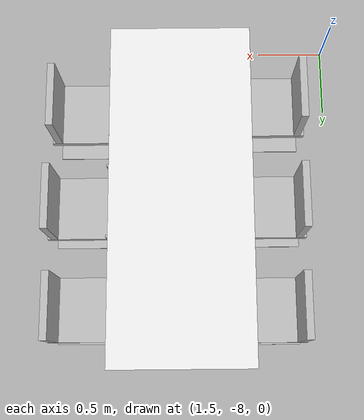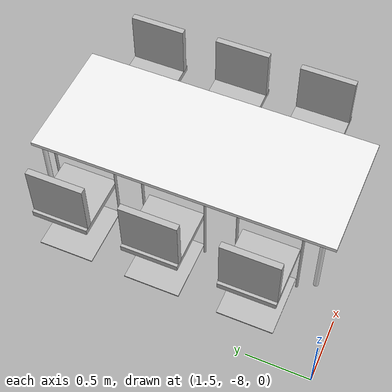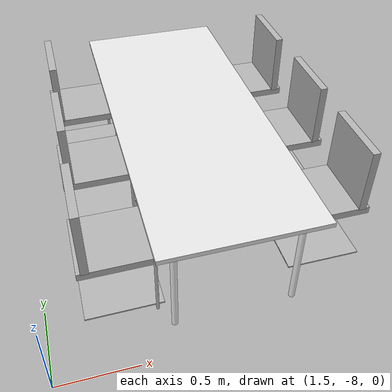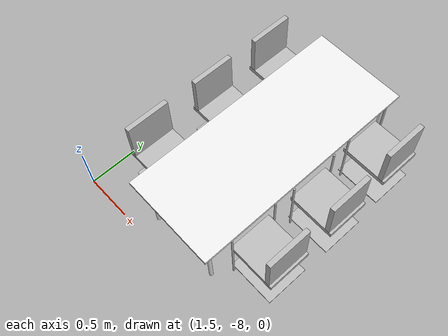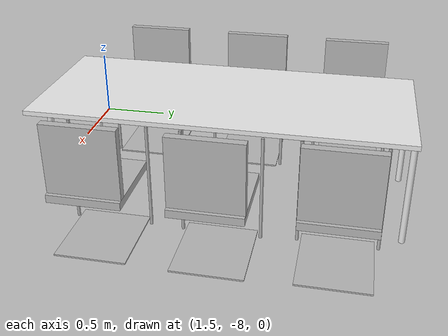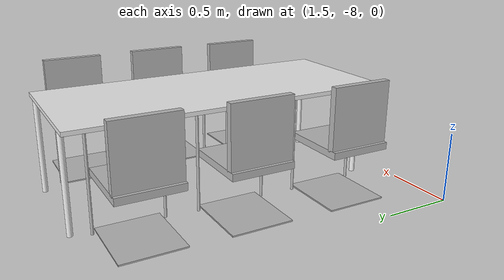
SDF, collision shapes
<sdf version="1.6">
 <model name="erica">
  <model name="table1_chair_tv_clone_clone_clone">
   <model name="h_chair">
    <link name="link_0">
     <inertial>
      <mass>1</mass>
      <inertia>
       <ixx>0.166667</ixx>
       <ixy>0</ixy>
       <ixz>0</ixz>
       <iyy>0.166667</iyy>
       <iyz>0</iyz>
       <izz>0.166667</izz>
      </inertia>
     </inertial>
     <visual name="visual">
      <geometry>
       <mesh><uri>model://erica/elements/h_chair/meshes/chair.dae</uri><scale>1 1 1</scale></mesh>
      </geometry>
     </visual>
     <collision name="collision_4">
      <pose>0 0 0.41 0 -0 0</pose>
      <geometry><box><size>0.5 0.45 0.05</size></box></geometry>
      <surface>
       <friction>
        <ode><mu>1</mu><mu2>1</mu2><fdir1>0 0 0</fdir1><slip1>0</slip1><slip2>0</slip2></ode>
        <torsional>
         <coefficient>1</coefficient>
         <patch_radius>0</patch_radius>
         <surface_radius>0</surface_radius>
         <use_patch_radius>1</use_patch_radius>
         <ode><slip>0</slip></ode>
        </torsional>
       </friction>
       <bounce><restitution_coefficient>0</restitution_coefficient><threshold>1e+06</threshold></bounce>
       <contact>
        <collide_without_contact>0</collide_without_contact>
        <collide_without_contact_bitmask>1</collide_without_contact_bitmask>
        <collide_bitmask>1</collide_bitmask>
        <ode>
         <soft_cfm>0</soft_cfm>
         <soft_erp>0.2</soft_erp>
         <kp>1e+13</kp>
         <kd>1</kd>
         <max_vel>0.01</max_vel>
         <min_depth>0</min_depth>
        </ode>
        <bullet>
         <split_impulse>1</split_impulse>
         <split_impulse_penetration_threshold>-0.01</split_impulse_penetration_threshold>
         <soft_cfm>0</soft_cfm>
         <soft_erp>0.2</soft_erp>
         <kp>1e+13</kp>
         <kd>1</kd>
        </bullet>
       </contact>
      </surface>
     </collision>
     <collision name="collision_3">
      <pose>0 0 0.01 0 -0 0</pose>
      <geometry><box><size>0.5 0.45 0.01</size></box></geometry>
      <surface>
       <friction>
        <ode><mu>1</mu><mu2>1</mu2><fdir1>0 0 0</fdir1><slip1>0</slip1><slip2>0</slip2></ode>
        <torsional>
         <coefficient>1</coefficient>
         <patch_radius>0</patch_radius>
         <surface_radius>0</surface_radius>
         <use_patch_radius>1</use_patch_radius>
         <ode><slip>0</slip></ode>
        </torsional>
       </friction>
       <bounce><restitution_coefficient>0</restitution_coefficient><threshold>1e+06</threshold></bounce>
       <contact>
        <collide_without_contact>0</collide_without_contact>
        <collide_without_contact_bitmask>1</collide_without_contact_bitmask>
        <collide_bitmask>1</collide_bitmask>
        <ode>
         <soft_cfm>0</soft_cfm>
         <soft_erp>0.2</soft_erp>
         <kp>1e+13</kp>
         <kd>1</kd>
         <max_vel>0.01</max_vel>
         <min_depth>0</min_depth>
        </ode>
        <bullet>
         <split_impulse>1</split_impulse>
         <split_impulse_penetration_threshold>-0.01</split_impulse_penetration_threshold>
         <soft_cfm>0</soft_cfm>
         <soft_erp>0.2</soft_erp>
         <kp>1e+13</kp>
         <kd>1</kd>
        </bullet>
       </contact>
      </surface>
     </collision>
     <collision name="collision_5">
      <pose>-0.2 0 0.65 0 -0 0</pose>
      <geometry><box><size>0.05 0.45 0.45</size></box></geometry>
      <surface>
       <friction>
        <ode><mu>1</mu><mu2>1</mu2><fdir1>0 0 0</fdir1><slip1>0</slip1><slip2>0</slip2></ode>
        <torsional>
         <coefficient>1</coefficient>
         <patch_radius>0</patch_radius>
         <surface_radius>0</surface_radius>
         <use_patch_radius>1</use_patch_radius>
         <ode><slip>0</slip></ode>
        </torsional>
       </friction>
       <bounce><restitution_coefficient>0</restitution_coefficient><threshold>1e+06</threshold></bounce>
       <contact>
        <collide_without_contact>0</collide_without_contact>
        <collide_without_contact_bitmask>1</collide_without_contact_bitmask>
        <collide_bitmask>1</collide_bitmask>
        <ode>
         <soft_cfm>0</soft_cfm>
         <soft_erp>0.2</soft_erp>
         <kp>1e+13</kp>
         <kd>1</kd>
         <max_vel>0.01</max_vel>
         <min_depth>0</min_depth>
        </ode>
        <bullet>
         <split_impulse>1</split_impulse>
         <split_impulse_penetration_threshold>-0.01</split_impulse_penetration_threshold>
         <soft_cfm>0</soft_cfm>
         <soft_erp>0.2</soft_erp>
         <kp>1e+13</kp>
         <kd>1</kd>
        </bullet>
       </contact>
      </surface>
     </collision>
     <collision name="collision_6">
      <pose>0.2 -0.25 0.35 0 -0 0</pose>
      <geometry><cylinder><radius>0.01</radius><length>0.7</length></cylinder></geometry>
      <surface>
       <friction>
        <ode><mu>1</mu><mu2>1</mu2><fdir1>0 0 0</fdir1><slip1>0</slip1><slip2>0</slip2></ode>
        <torsional>
         <coefficient>1</coefficient>
         <patch_radius>0</patch_radius>
         <surface_radius>0</surface_radius>
         <use_patch_radius>1</use_patch_radius>
         <ode><slip>0</slip></ode>
        </torsional>
       </friction>
       <bounce><restitution_coefficient>0</restitution_coefficient><threshold>1e+06</threshold></bounce>
       <contact>
        <collide_without_contact>0</collide_without_contact>
        <collide_without_contact_bitmask>1</collide_without_contact_bitmask>
        <collide_bitmask>1</collide_bitmask>
        <ode>
         <soft_cfm>0</soft_cfm>
         <soft_erp>0.2</soft_erp>
         <kp>1e+13</kp>
         <kd>1</kd>
         <max_vel>0.01</max_vel>
         <min_depth>0</min_depth>
        </ode>
        <bullet>
         <split_impulse>1</split_impulse>
         <split_impulse_penetration_threshold>-0.01</split_impulse_penetration_threshold>
         <soft_cfm>0</soft_cfm>
         <soft_erp>0.2</soft_erp>
         <kp>1e+13</kp>
         <kd>1</kd>
        </bullet>
       </contact>
      </surface>
     </collision>
     <collision name="collision_7">
      <pose>0.2 0.25 0.35 0 -0 0</pose>
      <geometry><cylinder><radius>0.01</radius><length>0.7</length></cylinder></geometry>
      <surface>
       <friction>
        <ode><mu>1</mu><mu2>1</mu2><fdir1>0 0 0</fdir1><slip1>0</slip1><slip2>0</slip2></ode>
        <torsional>
         <coefficient>1</coefficient>
         <patch_radius>0</patch_radius>
         <surface_radius>0</surface_radius>
         <use_patch_radius>1</use_patch_radius>
         <ode><slip>0</slip></ode>
        </torsional>
       </friction>
       <bounce><restitution_coefficient>0</restitution_coefficient><threshold>1e+06</threshold></bounce>
       <contact>
        <collide_without_contact>0</collide_without_contact>
        <collide_without_contact_bitmask>1</collide_without_contact_bitmask>
        <collide_bitmask>1</collide_bitmask>
        <ode>
         <soft_cfm>0</soft_cfm>
         <soft_erp>0.2</soft_erp>
         <kp>1e+13</kp>
         <kd>1</kd>
         <max_vel>0.01</max_vel>
         <min_depth>0</min_depth>
        </ode>
        <bullet>
         <split_impulse>1</split_impulse>
         <split_impulse_penetration_threshold>-0.01</split_impulse_penetration_threshold>
         <soft_cfm>0</soft_cfm>
         <soft_erp>0.2</soft_erp>
         <kp>1e+13</kp>
         <kd>1</kd>
        </bullet>
       </contact>
      </surface>
     </collision>
    </link>
    <static>1</static>
    <pose>-0.65015 0.677818 0 0 -0 0</pose>
   </model>
   <model name="h_chair_clone">
    <link name="link_0">
     <inertial>
      <mass>1</mass>
      <inertia>
       <ixx>0.166667</ixx>
       <ixy>0</ixy>
       <ixz>0</ixz>
       <iyy>0.166667</iyy>
       <iyz>0</iyz>
       <izz>0.166667</izz>
      </inertia>
     </inertial>
     <visual name="visual">
      <geometry>
       <mesh><uri>model://erica/elements/h_chair/meshes/chair.dae</uri><scale>1 1 1</scale></mesh>
      </geometry>
     </visual>
     <collision name="collision_4">
      <pose>0 0 0.41 0 -0 0</pose>
      <geometry><box><size>0.5 0.45 0.05</size></box></geometry>
      <surface>
       <friction>
        <ode><mu>1</mu><mu2>1</mu2><fdir1>0 0 0</fdir1><slip1>0</slip1><slip2>0</slip2></ode>
        <torsional>
         <coefficient>1</coefficient>
         <patch_radius>0</patch_radius>
         <surface_radius>0</surface_radius>
         <use_patch_radius>1</use_patch_radius>
         <ode><slip>0</slip></ode>
        </torsional>
       </friction>
       <bounce><restitution_coefficient>0</restitution_coefficient><threshold>1e+06</threshold></bounce>
       <contact>
        <collide_without_contact>0</collide_without_contact>
        <collide_without_contact_bitmask>1</collide_without_contact_bitmask>
        <collide_bitmask>1</collide_bitmask>
        <ode>
         <soft_cfm>0</soft_cfm>
         <soft_erp>0.2</soft_erp>
         <kp>1e+13</kp>
         <kd>1</kd>
         <max_vel>0.01</max_vel>
         <min_depth>0</min_depth>
        </ode>
        <bullet>
         <split_impulse>1</split_impulse>
         <split_impulse_penetration_threshold>-0.01</split_impulse_penetration_threshold>
         <soft_cfm>0</soft_cfm>
         <soft_erp>0.2</soft_erp>
         <kp>1e+13</kp>
         <kd>1</kd>
        </bullet>
       </contact>
      </surface>
     </collision>
     <collision name="collision_3">
      <pose>0 0 0.01 0 -0 0</pose>
      <geometry><box><size>0.5 0.45 0.01</size></box></geometry>
      <surface>
       <friction>
        <ode><mu>1</mu><mu2>1</mu2><fdir1>0 0 0</fdir1><slip1>0</slip1><slip2>0</slip2></ode>
        <torsional>
         <coefficient>1</coefficient>
         <patch_radius>0</patch_radius>
         <surface_radius>0</surface_radius>
         <use_patch_radius>1</use_patch_radius>
         <ode><slip>0</slip></ode>
        </torsional>
       </friction>
       <bounce><restitution_coefficient>0</restitution_coefficient><threshold>1e+06</threshold></bounce>
       <contact>
        <collide_without_contact>0</collide_without_contact>
        <collide_without_contact_bitmask>1</collide_without_contact_bitmask>
        <collide_bitmask>1</collide_bitmask>
        <ode>
         <soft_cfm>0</soft_cfm>
         <soft_erp>0.2</soft_erp>
         <kp>1e+13</kp>
         <kd>1</kd>
         <max_vel>0.01</max_vel>
         <min_depth>0</min_depth>
        </ode>
        <bullet>
         <split_impulse>1</split_impulse>
         <split_impulse_penetration_threshold>-0.01</split_impulse_penetration_threshold>
         <soft_cfm>0</soft_cfm>
         <soft_erp>0.2</soft_erp>
         <kp>1e+13</kp>
         <kd>1</kd>
        </bullet>
       </contact>
      </surface>
     </collision>
     <collision name="collision_5">
      <pose>-0.2 0 0.65 0 -0 0</pose>
      <geometry><box><size>0.05 0.45 0.45</size></box></geometry>
      <surface>
       <friction>
        <ode><mu>1</mu><mu2>1</mu2><fdir1>0 0 0</fdir1><slip1>0</slip1><slip2>0</slip2></ode>
        <torsional>
         <coefficient>1</coefficient>
         <patch_radius>0</patch_radius>
         <surface_radius>0</surface_radius>
         <use_patch_radius>1</use_patch_radius>
         <ode><slip>0</slip></ode>
        </torsional>
       </friction>
       <bounce><restitution_coefficient>0</restitution_coefficient><threshold>1e+06</threshold></bounce>
       <contact>
        <collide_without_contact>0</collide_without_contact>
        <collide_without_contact_bitmask>1</collide_without_contact_bitmask>
        <collide_bitmask>1</collide_bitmask>
        <ode>
         <soft_cfm>0</soft_cfm>
         <soft_erp>0.2</soft_erp>
         <kp>1e+13</kp>
         <kd>1</kd>
         <max_vel>0.01</max_vel>
         <min_depth>0</min_depth>
        </ode>
        <bullet>
         <split_impulse>1</split_impulse>
         <split_impulse_penetration_threshold>-0.01</split_impulse_penetration_threshold>
         <soft_cfm>0</soft_cfm>
         <soft_erp>0.2</soft_erp>
         <kp>1e+13</kp>
         <kd>1</kd>
        </bullet>
       </contact>
      </surface>
     </collision>
     <collision name="collision_6">
      <pose>0.2 -0.25 0.35 0 -0 0</pose>
      <geometry><cylinder><radius>0.01</radius><length>0.7</length></cylinder></geometry>
      <surface>
       <friction>
        <ode><mu>1</mu><mu2>1</mu2><fdir1>0 0 0</fdir1><slip1>0</slip1><slip2>0</slip2></ode>
        <torsional>
         <coefficient>1</coefficient>
         <patch_radius>0</patch_radius>
         <surface_radius>0</surface_radius>
         <use_patch_radius>1</use_patch_radius>
         <ode><slip>0</slip></ode>
        </torsional>
       </friction>
       <bounce><restitution_coefficient>0</restitution_coefficient><threshold>1e+06</threshold></bounce>
       <contact>
        <collide_without_contact>0</collide_without_contact>
        <collide_without_contact_bitmask>1</collide_without_contact_bitmask>
        <collide_bitmask>1</collide_bitmask>
        <ode>
         <soft_cfm>0</soft_cfm>
         <soft_erp>0.2</soft_erp>
         <kp>1e+13</kp>
         <kd>1</kd>
         <max_vel>0.01</max_vel>
         <min_depth>0</min_depth>
        </ode>
        <bullet>
         <split_impulse>1</split_impulse>
         <split_impulse_penetration_threshold>-0.01</split_impulse_penetration_threshold>
         <soft_cfm>0</soft_cfm>
         <soft_erp>0.2</soft_erp>
         <kp>1e+13</kp>
         <kd>1</kd>
        </bullet>
       </contact>
      </surface>
     </collision>
     <collision name="collision_7">
      <pose>0.2 0.25 0.35 0 -0 0</pose>
      <geometry><cylinder><radius>0.01</radius><length>0.7</length></cylinder></geometry>
      <surface>
       <friction>
        <ode><mu>1</mu><mu2>1</mu2><fdir1>0 0 0</fdir1><slip1>0</slip1><slip2>0</slip2></ode>
        <torsional>
         <coefficient>1</coefficient>
         <patch_radius>0</patch_radius>
         <surface_radius>0</surface_radius>
         <use_patch_radius>1</use_patch_radius>
         <ode><slip>0</slip></ode>
        </torsional>
       </friction>
       <bounce><restitution_coefficient>0</restitution_coefficient><threshold>1e+06</threshold></bounce>
       <contact>
        <collide_without_contact>0</collide_without_contact>
        <collide_without_contact_bitmask>1</collide_without_contact_bitmask>
        <collide_bitmask>1</collide_bitmask>
        <ode>
         <soft_cfm>0</soft_cfm>
         <soft_erp>0.2</soft_erp>
         <kp>1e+13</kp>
         <kd>1</kd>
         <max_vel>0.01</max_vel>
         <min_depth>0</min_depth>
        </ode>
        <bullet>
         <split_impulse>1</split_impulse>
         <split_impulse_penetration_threshold>-0.01</split_impulse_penetration_threshold>
         <soft_cfm>0</soft_cfm>
         <soft_erp>0.2</soft_erp>
         <kp>1e+13</kp>
         <kd>1</kd>
        </bullet>
       </contact>
      </surface>
     </collision>
    </link>
    <static>1</static>
    <pose>-0.668032 -0.060178 0 0 -0 0</pose>
   </model>
   <model name="h_chair_clone_0">
    <link name="link_0">
     <inertial>
      <mass>1</mass>
      <inertia>
       <ixx>0.166667</ixx>
       <ixy>0</ixy>
       <ixz>0</ixz>
       <iyy>0.166667</iyy>
       <iyz>0</iyz>
       <izz>0.166667</izz>
      </inertia>
     </inertial>
     <visual name="visual">
      <geometry>
       <mesh><uri>model://erica/elements/h_chair/meshes/chair.dae</uri><scale>1 1 1</scale></mesh>
      </geometry>
     </visual>
     <collision name="collision_4">
      <pose>0 0 0.41 0 -0 0</pose>
      <geometry><box><size>0.5 0.45 0.05</size></box></geometry>
      <surface>
       <friction>
        <ode><mu>1</mu><mu2>1</mu2><fdir1>0 0 0</fdir1><slip1>0</slip1><slip2>0</slip2></ode>
        <torsional>
         <coefficient>1</coefficient>
         <patch_radius>0</patch_radius>
         <surface_radius>0</surface_radius>
         <use_patch_radius>1</use_patch_radius>
         <ode><slip>0</slip></ode>
        </torsional>
       </friction>
       <bounce><restitution_coefficient>0</restitution_coefficient><threshold>1e+06</threshold></bounce>
       <contact>
        <collide_without_contact>0</collide_without_contact>
        <collide_without_contact_bitmask>1</collide_without_contact_bitmask>
        <collide_bitmask>1</collide_bitmask>
        <ode>
         <soft_cfm>0</soft_cfm>
         <soft_erp>0.2</soft_erp>
         <kp>1e+13</kp>
         <kd>1</kd>
         <max_vel>0.01</max_vel>
         <min_depth>0</min_depth>
        </ode>
        <bullet>
         <split_impulse>1</split_impulse>
         <split_impulse_penetration_threshold>-0.01</split_impulse_penetration_threshold>
         <soft_cfm>0</soft_cfm>
         <soft_erp>0.2</soft_erp>
         <kp>1e+13</kp>
         <kd>1</kd>
        </bullet>
       </contact>
      </surface>
     </collision>
     <collision name="collision_3">
      <pose>0 0 0.01 0 -0 0</pose>
      <geometry><box><size>0.5 0.45 0.01</size></box></geometry>
      <surface>
       <friction>
        <ode><mu>1</mu><mu2>1</mu2><fdir1>0 0 0</fdir1><slip1>0</slip1><slip2>0</slip2></ode>
        <torsional>
         <coefficient>1</coefficient>
         <patch_radius>0</patch_radius>
         <surface_radius>0</surface_radius>
         <use_patch_radius>1</use_patch_radius>
         <ode><slip>0</slip></ode>
        </torsional>
       </friction>
       <bounce><restitution_coefficient>0</restitution_coefficient><threshold>1e+06</threshold></bounce>
       <contact>
        <collide_without_contact>0</collide_without_contact>
        <collide_without_contact_bitmask>1</collide_without_contact_bitmask>
        <collide_bitmask>1</collide_bitmask>
        <ode>
         <soft_cfm>0</soft_cfm>
         <soft_erp>0.2</soft_erp>
         <kp>1e+13</kp>
         <kd>1</kd>
         <max_vel>0.01</max_vel>
         <min_depth>0</min_depth>
        </ode>
        <bullet>
         <split_impulse>1</split_impulse>
         <split_impulse_penetration_threshold>-0.01</split_impulse_penetration_threshold>
         <soft_cfm>0</soft_cfm>
         <soft_erp>0.2</soft_erp>
         <kp>1e+13</kp>
         <kd>1</kd>
        </bullet>
       </contact>
      </surface>
     </collision>
     <collision name="collision_5">
      <pose>-0.2 0 0.65 0 -0 0</pose>
      <geometry><box><size>0.05 0.45 0.45</size></box></geometry>
      <surface>
       <friction>
        <ode><mu>1</mu><mu2>1</mu2><fdir1>0 0 0</fdir1><slip1>0</slip1><slip2>0</slip2></ode>
        <torsional>
         <coefficient>1</coefficient>
         <patch_radius>0</patch_radius>
         <surface_radius>0</surface_radius>
         <use_patch_radius>1</use_patch_radius>
         <ode><slip>0</slip></ode>
        </torsional>
       </friction>
       <bounce><restitution_coefficient>0</restitution_coefficient><threshold>1e+06</threshold></bounce>
       <contact>
        <collide_without_contact>0</collide_without_contact>
        <collide_without_contact_bitmask>1</collide_without_contact_bitmask>
        <collide_bitmask>1</collide_bitmask>
        <ode>
         <soft_cfm>0</soft_cfm>
         <soft_erp>0.2</soft_erp>
         <kp>1e+13</kp>
         <kd>1</kd>
         <max_vel>0.01</max_vel>
         <min_depth>0</min_depth>
        </ode>
        <bullet>
         <split_impulse>1</split_impulse>
         <split_impulse_penetration_threshold>-0.01</split_impulse_penetration_threshold>
         <soft_cfm>0</soft_cfm>
         <soft_erp>0.2</soft_erp>
         <kp>1e+13</kp>
         <kd>1</kd>
        </bullet>
       </contact>
      </surface>
     </collision>
     <collision name="collision_6">
      <pose>0.2 -0.25 0.35 0 -0 0</pose>
      <geometry><cylinder><radius>0.01</radius><length>0.7</length></cylinder></geometry>
      <surface>
       <friction>
        <ode><mu>1</mu><mu2>1</mu2><fdir1>0 0 0</fdir1><slip1>0</slip1><slip2>0</slip2></ode>
        <torsional>
         <coefficient>1</coefficient>
         <patch_radius>0</patch_radius>
         <surface_radius>0</surface_radius>
         <use_patch_radius>1</use_patch_radius>
         <ode><slip>0</slip></ode>
        </torsional>
       </friction>
       <bounce><restitution_coefficient>0</restitution_coefficient><threshold>1e+06</threshold></bounce>
       <contact>
        <collide_without_contact>0</collide_without_contact>
        <collide_without_contact_bitmask>1</collide_without_contact_bitmask>
        <collide_bitmask>1</collide_bitmask>
        <ode>
         <soft_cfm>0</soft_cfm>
         <soft_erp>0.2</soft_erp>
         <kp>1e+13</kp>
         <kd>1</kd>
         <max_vel>0.01</max_vel>
         <min_depth>0</min_depth>
        </ode>
        <bullet>
         <split_impulse>1</split_impulse>
         <split_impulse_penetration_threshold>-0.01</split_impulse_penetration_threshold>
         <soft_cfm>0</soft_cfm>
         <soft_erp>0.2</soft_erp>
         <kp>1e+13</kp>
         <kd>1</kd>
        </bullet>
       </contact>
      </surface>
     </collision>
     <collision name="collision_7">
      <pose>0.2 0.25 0.35 0 -0 0</pose>
      <geometry><cylinder><radius>0.01</radius><length>0.7</length></cylinder></geometry>
      <surface>
       <friction>
        <ode><mu>1</mu><mu2>1</mu2><fdir1>0 0 0</fdir1><slip1>0</slip1><slip2>0</slip2></ode>
        <torsional>
         <coefficient>1</coefficient>
         <patch_radius>0</patch_radius>
         <surface_radius>0</surface_radius>
         <use_patch_radius>1</use_patch_radius>
         <ode><slip>0</slip></ode>
        </torsional>
       </friction>
       <bounce><restitution_coefficient>0</restitution_coefficient><threshold>1e+06</threshold></bounce>
       <contact>
        <collide_without_contact>0</collide_without_contact>
        <collide_without_contact_bitmask>1</collide_without_contact_bitmask>
        <collide_bitmask>1</collide_bitmask>
        <ode>
         <soft_cfm>0</soft_cfm>
         <soft_erp>0.2</soft_erp>
         <kp>1e+13</kp>
         <kd>1</kd>
         <max_vel>0.01</max_vel>
         <min_depth>0</min_depth>
        </ode>
        <bullet>
         <split_impulse>1</split_impulse>
         <split_impulse_penetration_threshold>-0.01</split_impulse_penetration_threshold>
         <soft_cfm>0</soft_cfm>
         <soft_erp>0.2</soft_erp>
         <kp>1e+13</kp>
         <kd>1</kd>
        </bullet>
       </contact>
      </surface>
     </collision>
    </link>
    <static>1</static>
    <pose>-0.679941 -0.822301 0 0 -0 0</pose>
   </model>
   <model name="h_chair_clone_1">
    <link name="link_0">
     <inertial>
      <mass>1</mass>
      <inertia>
       <ixx>0.166667</ixx>
       <ixy>0</ixy>
       <ixz>0</ixz>
       <iyy>0.166667</iyy>
       <iyz>0</iyz>
       <izz>0.166667</izz>
      </inertia>
     </inertial>
     <visual name="visual">
      <geometry>
       <mesh><uri>model://erica/elements/h_chair/meshes/chair.dae</uri><scale>1 1 1</scale></mesh>
      </geometry>
     </visual>
     <collision name="collision_4">
      <pose>0 0 0.41 0 -0 0</pose>
      <geometry><box><size>0.5 0.45 0.05</size></box></geometry>
      <surface>
       <friction>
        <ode><mu>1</mu><mu2>1</mu2><fdir1>0 0 0</fdir1><slip1>0</slip1><slip2>0</slip2></ode>
        <torsional>
         <coefficient>1</coefficient>
         <patch_radius>0</patch_radius>
         <surface_radius>0</surface_radius>
         <use_patch_radius>1</use_patch_radius>
         <ode><slip>0</slip></ode>
        </torsional>
       </friction>
       <bounce><restitution_coefficient>0</restitution_coefficient><threshold>1e+06</threshold></bounce>
       <contact>
        <collide_without_contact>0</collide_without_contact>
        <collide_without_contact_bitmask>1</collide_without_contact_bitmask>
        <collide_bitmask>1</collide_bitmask>
        <ode>
         <soft_cfm>0</soft_cfm>
         <soft_erp>0.2</soft_erp>
         <kp>1e+13</kp>
         <kd>1</kd>
         <max_vel>0.01</max_vel>
         <min_depth>0</min_depth>
        </ode>
        <bullet>
         <split_impulse>1</split_impulse>
         <split_impulse_penetration_threshold>-0.01</split_impulse_penetration_threshold>
         <soft_cfm>0</soft_cfm>
         <soft_erp>0.2</soft_erp>
         <kp>1e+13</kp>
         <kd>1</kd>
        </bullet>
       </contact>
      </surface>
     </collision>
     <collision name="collision_3">
      <pose>0 0 0.01 0 -0 0</pose>
      <geometry><box><size>0.5 0.45 0.01</size></box></geometry>
      <surface>
       <friction>
        <ode><mu>1</mu><mu2>1</mu2><fdir1>0 0 0</fdir1><slip1>0</slip1><slip2>0</slip2></ode>
        <torsional>
         <coefficient>1</coefficient>
         <patch_radius>0</patch_radius>
         <surface_radius>0</surface_radius>
         <use_patch_radius>1</use_patch_radius>
         <ode><slip>0</slip></ode>
        </torsional>
       </friction>
       <bounce><restitution_coefficient>0</restitution_coefficient><threshold>1e+06</threshold></bounce>
       <contact>
        <collide_without_contact>0</collide_without_contact>
        <collide_without_contact_bitmask>1</collide_without_contact_bitmask>
        <collide_bitmask>1</collide_bitmask>
        <ode>
         <soft_cfm>0</soft_cfm>
         <soft_erp>0.2</soft_erp>
         <kp>1e+13</kp>
         <kd>1</kd>
         <max_vel>0.01</max_vel>
         <min_depth>0</min_depth>
        </ode>
        <bullet>
         <split_impulse>1</split_impulse>
         <split_impulse_penetration_threshold>-0.01</split_impulse_penetration_threshold>
         <soft_cfm>0</soft_cfm>
         <soft_erp>0.2</soft_erp>
         <kp>1e+13</kp>
         <kd>1</kd>
        </bullet>
       </contact>
      </surface>
     </collision>
     <collision name="collision_5">
      <pose>-0.2 0 0.65 0 -0 0</pose>
      <geometry><box><size>0.05 0.45 0.45</size></box></geometry>
      <surface>
       <friction>
        <ode><mu>1</mu><mu2>1</mu2><fdir1>0 0 0</fdir1><slip1>0</slip1><slip2>0</slip2></ode>
        <torsional>
         <coefficient>1</coefficient>
         <patch_radius>0</patch_radius>
         <surface_radius>0</surface_radius>
         <use_patch_radius>1</use_patch_radius>
         <ode><slip>0</slip></ode>
        </torsional>
       </friction>
       <bounce><restitution_coefficient>0</restitution_coefficient><threshold>1e+06</threshold></bounce>
       <contact>
        <collide_without_contact>0</collide_without_contact>
        <collide_without_contact_bitmask>1</collide_without_contact_bitmask>
        <collide_bitmask>1</collide_bitmask>
        <ode>
         <soft_cfm>0</soft_cfm>
         <soft_erp>0.2</soft_erp>
         <kp>1e+13</kp>
         <kd>1</kd>
         <max_vel>0.01</max_vel>
         <min_depth>0</min_depth>
        </ode>
        <bullet>
         <split_impulse>1</split_impulse>
         <split_impulse_penetration_threshold>-0.01</split_impulse_penetration_threshold>
         <soft_cfm>0</soft_cfm>
         <soft_erp>0.2</soft_erp>
         <kp>1e+13</kp>
         <kd>1</kd>
        </bullet>
       </contact>
      </surface>
     </collision>
     <collision name="collision_6">
      <pose>0.2 -0.25 0.35 0 -0 0</pose>
      <geometry><cylinder><radius>0.01</radius><length>0.7</length></cylinder></geometry>
      <surface>
       <friction>
        <ode><mu>1</mu><mu2>1</mu2><fdir1>0 0 0</fdir1><slip1>0</slip1><slip2>0</slip2></ode>
        <torsional>
         <coefficient>1</coefficient>
         <patch_radius>0</patch_radius>
         <surface_radius>0</surface_radius>
         <use_patch_radius>1</use_patch_radius>
         <ode><slip>0</slip></ode>
        </torsional>
       </friction>
       <bounce><restitution_coefficient>0</restitution_coefficient><threshold>1e+06</threshold></bounce>
       <contact>
        <collide_without_contact>0</collide_without_contact>
        <collide_without_contact_bitmask>1</collide_without_contact_bitmask>
        <collide_bitmask>1</collide_bitmask>
        <ode>
         <soft_cfm>0</soft_cfm>
         <soft_erp>0.2</soft_erp>
         <kp>1e+13</kp>
         <kd>1</kd>
         <max_vel>0.01</max_vel>
         <min_depth>0</min_depth>
        </ode>
        <bullet>
         <split_impulse>1</split_impulse>
         <split_impulse_penetration_threshold>-0.01</split_impulse_penetration_threshold>
         <soft_cfm>0</soft_cfm>
         <soft_erp>0.2</soft_erp>
         <kp>1e+13</kp>
         <kd>1</kd>
        </bullet>
       </contact>
      </surface>
     </collision>
     <collision name="collision_7">
      <pose>0.2 0.25 0.35 0 -0 0</pose>
      <geometry><cylinder><radius>0.01</radius><length>0.7</length></cylinder></geometry>
      <surface>
       <friction>
        <ode><mu>1</mu><mu2>1</mu2><fdir1>0 0 0</fdir1><slip1>0</slip1><slip2>0</slip2></ode>
        <torsional>
         <coefficient>1</coefficient>
         <patch_radius>0</patch_radius>
         <surface_radius>0</surface_radius>
         <use_patch_radius>1</use_patch_radius>
         <ode><slip>0</slip></ode>
        </torsional>
       </friction>
       <bounce><restitution_coefficient>0</restitution_coefficient><threshold>1e+06</threshold></bounce>
       <contact>
        <collide_without_contact>0</collide_without_contact>
        <collide_without_contact_bitmask>1</collide_without_contact_bitmask>
        <collide_bitmask>1</collide_bitmask>
        <ode>
         <soft_cfm>0</soft_cfm>
         <soft_erp>0.2</soft_erp>
         <kp>1e+13</kp>
         <kd>1</kd>
         <max_vel>0.01</max_vel>
         <min_depth>0</min_depth>
        </ode>
        <bullet>
         <split_impulse>1</split_impulse>
         <split_impulse_penetration_threshold>-0.01</split_impulse_penetration_threshold>
         <soft_cfm>0</soft_cfm>
         <soft_erp>0.2</soft_erp>
         <kp>1e+13</kp>
         <kd>1</kd>
        </bullet>
       </contact>
      </surface>
     </collision>
    </link>
    <static>1</static>
    <pose>0.664034 0.665185 0 0 -0 3.13853</pose>
   </model>
   <model name="h_chair_clone_1_clone">
    <link name="link_0">
     <inertial>
      <mass>1</mass>
      <inertia>
       <ixx>0.166667</ixx>
       <ixy>0</ixy>
       <ixz>0</ixz>
       <iyy>0.166667</iyy>
       <iyz>0</iyz>
       <izz>0.166667</izz>
      </inertia>
     </inertial>
     <visual name="visual">
      <geometry>
       <mesh><uri>model://erica/elements/h_chair/meshes/chair.dae</uri><scale>1 1 1</scale></mesh>
      </geometry>
     </visual>
     <collision name="collision_4">
      <pose>0 0 0.41 0 -0 0</pose>
      <geometry><box><size>0.5 0.45 0.05</size></box></geometry>
      <surface>
       <friction>
        <ode><mu>1</mu><mu2>1</mu2><fdir1>0 0 0</fdir1><slip1>0</slip1><slip2>0</slip2></ode>
        <torsional>
         <coefficient>1</coefficient>
         <patch_radius>0</patch_radius>
         <surface_radius>0</surface_radius>
         <use_patch_radius>1</use_patch_radius>
         <ode><slip>0</slip></ode>
        </torsional>
       </friction>
       <bounce><restitution_coefficient>0</restitution_coefficient><threshold>1e+06</threshold></bounce>
       <contact>
        <collide_without_contact>0</collide_without_contact>
        <collide_without_contact_bitmask>1</collide_without_contact_bitmask>
        <collide_bitmask>1</collide_bitmask>
        <ode>
         <soft_cfm>0</soft_cfm>
         <soft_erp>0.2</soft_erp>
         <kp>1e+13</kp>
         <kd>1</kd>
         <max_vel>0.01</max_vel>
         <min_depth>0</min_depth>
        </ode>
        <bullet>
         <split_impulse>1</split_impulse>
         <split_impulse_penetration_threshold>-0.01</split_impulse_penetration_threshold>
         <soft_cfm>0</soft_cfm>
         <soft_erp>0.2</soft_erp>
         <kp>1e+13</kp>
         <kd>1</kd>
        </bullet>
       </contact>
      </surface>
     </collision>
     <collision name="collision_3">
      <pose>0 0 0.01 0 -0 0</pose>
      <geometry><box><size>0.5 0.45 0.01</size></box></geometry>
      <surface>
       <friction>
        <ode><mu>1</mu><mu2>1</mu2><fdir1>0 0 0</fdir1><slip1>0</slip1><slip2>0</slip2></ode>
        <torsional>
         <coefficient>1</coefficient>
         <patch_radius>0</patch_radius>
         <surface_radius>0</surface_radius>
         <use_patch_radius>1</use_patch_radius>
         <ode><slip>0</slip></ode>
        </torsional>
       </friction>
       <bounce><restitution_coefficient>0</restitution_coefficient><threshold>1e+06</threshold></bounce>
       <contact>
        <collide_without_contact>0</collide_without_contact>
        <collide_without_contact_bitmask>1</collide_without_contact_bitmask>
        <collide_bitmask>1</collide_bitmask>
        <ode>
         <soft_cfm>0</soft_cfm>
         <soft_erp>0.2</soft_erp>
         <kp>1e+13</kp>
         <kd>1</kd>
         <max_vel>0.01</max_vel>
         <min_depth>0</min_depth>
        </ode>
        <bullet>
         <split_impulse>1</split_impulse>
         <split_impulse_penetration_threshold>-0.01</split_impulse_penetration_threshold>
         <soft_cfm>0</soft_cfm>
         <soft_erp>0.2</soft_erp>
         <kp>1e+13</kp>
         <kd>1</kd>
        </bullet>
       </contact>
      </surface>
     </collision>
     <collision name="collision_5">
      <pose>-0.2 0 0.65 0 -0 0</pose>
      <geometry><box><size>0.05 0.45 0.45</size></box></geometry>
      <surface>
       <friction>
        <ode><mu>1</mu><mu2>1</mu2><fdir1>0 0 0</fdir1><slip1>0</slip1><slip2>0</slip2></ode>
        <torsional>
         <coefficient>1</coefficient>
         <patch_radius>0</patch_radius>
         <surface_radius>0</surface_radius>
         <use_patch_radius>1</use_patch_radius>
         <ode><slip>0</slip></ode>
        </torsional>
       </friction>
       <bounce><restitution_coefficient>0</restitution_coefficient><threshold>1e+06</threshold></bounce>
       <contact>
        <collide_without_contact>0</collide_without_contact>
        <collide_without_contact_bitmask>1</collide_without_contact_bitmask>
        <collide_bitmask>1</collide_bitmask>
        <ode>
         <soft_cfm>0</soft_cfm>
         <soft_erp>0.2</soft_erp>
         <kp>1e+13</kp>
         <kd>1</kd>
         <max_vel>0.01</max_vel>
         <min_depth>0</min_depth>
        </ode>
        <bullet>
         <split_impulse>1</split_impulse>
         <split_impulse_penetration_threshold>-0.01</split_impulse_penetration_threshold>
         <soft_cfm>0</soft_cfm>
         <soft_erp>0.2</soft_erp>
         <kp>1e+13</kp>
         <kd>1</kd>
        </bullet>
       </contact>
      </surface>
     </collision>
     <collision name="collision_6">
      <pose>0.2 -0.25 0.35 0 -0 0</pose>
      <geometry><cylinder><radius>0.01</radius><length>0.7</length></cylinder></geometry>
      <surface>
       <friction>
        <ode><mu>1</mu><mu2>1</mu2><fdir1>0 0 0</fdir1><slip1>0</slip1><slip2>0</slip2></ode>
        <torsional>
         <coefficient>1</coefficient>
         <patch_radius>0</patch_radius>
         <surface_radius>0</surface_radius>
         <use_patch_radius>1</use_patch_radius>
         <ode><slip>0</slip></ode>
        </torsional>
       </friction>
       <bounce><restitution_coefficient>0</restitution_coefficient><threshold>1e+06</threshold></bounce>
       <contact>
        <collide_without_contact>0</collide_without_contact>
        <collide_without_contact_bitmask>1</collide_without_contact_bitmask>
        <collide_bitmask>1</collide_bitmask>
        <ode>
         <soft_cfm>0</soft_cfm>
         <soft_erp>0.2</soft_erp>
         <kp>1e+13</kp>
         <kd>1</kd>
         <max_vel>0.01</max_vel>
         <min_depth>0</min_depth>
        </ode>
        <bullet>
         <split_impulse>1</split_impulse>
         <split_impulse_penetration_threshold>-0.01</split_impulse_penetration_threshold>
         <soft_cfm>0</soft_cfm>
         <soft_erp>0.2</soft_erp>
         <kp>1e+13</kp>
         <kd>1</kd>
        </bullet>
       </contact>
      </surface>
     </collision>
     <collision name="collision_7">
      <pose>0.2 0.25 0.35 0 -0 0</pose>
      <geometry><cylinder><radius>0.01</radius><length>0.7</length></cylinder></geometry>
      <surface>
       <friction>
        <ode><mu>1</mu><mu2>1</mu2><fdir1>0 0 0</fdir1><slip1>0</slip1><slip2>0</slip2></ode>
        <torsional>
         <coefficient>1</coefficient>
         <patch_radius>0</patch_radius>
         <surface_radius>0</surface_radius>
         <use_patch_radius>1</use_patch_radius>
         <ode><slip>0</slip></ode>
        </torsional>
       </friction>
       <bounce><restitution_coefficient>0</restitution_coefficient><threshold>1e+06</threshold></bounce>
       <contact>
        <collide_without_contact>0</collide_without_contact>
        <collide_without_contact_bitmask>1</collide_without_contact_bitmask>
        <collide_bitmask>1</collide_bitmask>
        <ode>
         <soft_cfm>0</soft_cfm>
         <soft_erp>0.2</soft_erp>
         <kp>1e+13</kp>
         <kd>1</kd>
         <max_vel>0.01</max_vel>
         <min_depth>0</min_depth>
        </ode>
        <bullet>
         <split_impulse>1</split_impulse>
         <split_impulse_penetration_threshold>-0.01</split_impulse_penetration_threshold>
         <soft_cfm>0</soft_cfm>
         <soft_erp>0.2</soft_erp>
         <kp>1e+13</kp>
         <kd>1</kd>
        </bullet>
       </contact>
      </surface>
     </collision>
    </link>
    <static>1</static>
    <pose>0.671484 -0.777358 0 0 -0 3.13853</pose>
   </model>
   <model name="h_chair_clone_1_clone_clone">
    <link name="link_0">
     <inertial>
      <mass>1</mass>
      <inertia>
       <ixx>0.166667</ixx>
       <ixy>0</ixy>
       <ixz>0</ixz>
       <iyy>0.166667</iyy>
       <iyz>0</iyz>
       <izz>0.166667</izz>
      </inertia>
     </inertial>
     <visual name="visual">
      <geometry>
       <mesh><uri>model://erica/elements/h_chair/meshes/chair.dae</uri><scale>1 1 1</scale></mesh>
      </geometry>
     </visual>
     <collision name="collision_4">
      <pose>0 0 0.41 0 -0 0</pose>
      <geometry><box><size>0.5 0.45 0.05</size></box></geometry>
      <surface>
       <friction>
        <ode><mu>1</mu><mu2>1</mu2><fdir1>0 0 0</fdir1><slip1>0</slip1><slip2>0</slip2></ode>
        <torsional>
         <coefficient>1</coefficient>
         <patch_radius>0</patch_radius>
         <surface_radius>0</surface_radius>
         <use_patch_radius>1</use_patch_radius>
         <ode><slip>0</slip></ode>
        </torsional>
       </friction>
       <bounce><restitution_coefficient>0</restitution_coefficient><threshold>1e+06</threshold></bounce>
       <contact>
        <collide_without_contact>0</collide_without_contact>
        <collide_without_contact_bitmask>1</collide_without_contact_bitmask>
        <collide_bitmask>1</collide_bitmask>
        <ode>
         <soft_cfm>0</soft_cfm>
         <soft_erp>0.2</soft_erp>
         <kp>1e+13</kp>
         <kd>1</kd>
         <max_vel>0.01</max_vel>
         <min_depth>0</min_depth>
        </ode>
        <bullet>
         <split_impulse>1</split_impulse>
         <split_impulse_penetration_threshold>-0.01</split_impulse_penetration_threshold>
         <soft_cfm>0</soft_cfm>
         <soft_erp>0.2</soft_erp>
         <kp>1e+13</kp>
         <kd>1</kd>
        </bullet>
       </contact>
      </surface>
     </collision>
     <collision name="collision_3">
      <pose>0 0 0.01 0 -0 0</pose>
      <geometry><box><size>0.5 0.45 0.01</size></box></geometry>
      <surface>
       <friction>
        <ode><mu>1</mu><mu2>1</mu2><fdir1>0 0 0</fdir1><slip1>0</slip1><slip2>0</slip2></ode>
        <torsional>
         <coefficient>1</coefficient>
         <patch_radius>0</patch_radius>
         <surface_radius>0</surface_radius>
         <use_patch_radius>1</use_patch_radius>
         <ode><slip>0</slip></ode>
        </torsional>
       </friction>
       <bounce><restitution_coefficient>0</restitution_coefficient><threshold>1e+06</threshold></bounce>
       <contact>
        <collide_without_contact>0</collide_without_contact>
        <collide_without_contact_bitmask>1</collide_without_contact_bitmask>
        <collide_bitmask>1</collide_bitmask>
        <ode>
         <soft_cfm>0</soft_cfm>
         <soft_erp>0.2</soft_erp>
         <kp>1e+13</kp>
         <kd>1</kd>
         <max_vel>0.01</max_vel>
         <min_depth>0</min_depth>
        </ode>
        <bullet>
         <split_impulse>1</split_impulse>
         <split_impulse_penetration_threshold>-0.01</split_impulse_penetration_threshold>
         <soft_cfm>0</soft_cfm>
         <soft_erp>0.2</soft_erp>
         <kp>1e+13</kp>
         <kd>1</kd>
        </bullet>
       </contact>
      </surface>
     </collision>
     <collision name="collision_5">
      <pose>-0.2 0 0.65 0 -0 0</pose>
      <geometry><box><size>0.05 0.45 0.45</size></box></geometry>
      <surface>
       <friction>
        <ode><mu>1</mu><mu2>1</mu2><fdir1>0 0 0</fdir1><slip1>0</slip1><slip2>0</slip2></ode>
        <torsional>
         <coefficient>1</coefficient>
         <patch_radius>0</patch_radius>
         <surface_radius>0</surface_radius>
         <use_patch_radius>1</use_patch_radius>
         <ode><slip>0</slip></ode>
        </torsional>
       </friction>
       <bounce><restitution_coefficient>0</restitution_coefficient><threshold>1e+06</threshold></bounce>
       <contact>
        <collide_without_contact>0</collide_without_contact>
        <collide_without_contact_bitmask>1</collide_without_contact_bitmask>
        <collide_bitmask>1</collide_bitmask>
        <ode>
         <soft_cfm>0</soft_cfm>
         <soft_erp>0.2</soft_erp>
         <kp>1e+13</kp>
         <kd>1</kd>
         <max_vel>0.01</max_vel>
         <min_depth>0</min_depth>
        </ode>
        <bullet>
         <split_impulse>1</split_impulse>
         <split_impulse_penetration_threshold>-0.01</split_impulse_penetration_threshold>
         <soft_cfm>0</soft_cfm>
         <soft_erp>0.2</soft_erp>
         <kp>1e+13</kp>
         <kd>1</kd>
        </bullet>
       </contact>
      </surface>
     </collision>
     <collision name="collision_6">
      <pose>0.2 -0.25 0.35 0 -0 0</pose>
      <geometry><cylinder><radius>0.01</radius><length>0.7</length></cylinder></geometry>
      <surface>
       <friction>
        <ode><mu>1</mu><mu2>1</mu2><fdir1>0 0 0</fdir1><slip1>0</slip1><slip2>0</slip2></ode>
        <torsional>
         <coefficient>1</coefficient>
         <patch_radius>0</patch_radius>
         <surface_radius>0</surface_radius>
         <use_patch_radius>1</use_patch_radius>
         <ode><slip>0</slip></ode>
        </torsional>
       </friction>
       <bounce><restitution_coefficient>0</restitution_coefficient><threshold>1e+06</threshold></bounce>
       <contact>
        <collide_without_contact>0</collide_without_contact>
        <collide_without_contact_bitmask>1</collide_without_contact_bitmask>
        <collide_bitmask>1</collide_bitmask>
        <ode>
         <soft_cfm>0</soft_cfm>
         <soft_erp>0.2</soft_erp>
         <kp>1e+13</kp>
         <kd>1</kd>
         <max_vel>0.01</max_vel>
         <min_depth>0</min_depth>
        </ode>
        <bullet>
         <split_impulse>1</split_impulse>
         <split_impulse_penetration_threshold>-0.01</split_impulse_penetration_threshold>
         <soft_cfm>0</soft_cfm>
         <soft_erp>0.2</soft_erp>
         <kp>1e+13</kp>
         <kd>1</kd>
        </bullet>
       </contact>
      </surface>
     </collision>
     <collision name="collision_7">
      <pose>0.2 0.25 0.35 0 -0 0</pose>
      <geometry><cylinder><radius>0.01</radius><length>0.7</length></cylinder></geometry>
      <surface>
       <friction>
        <ode><mu>1</mu><mu2>1</mu2><fdir1>0 0 0</fdir1><slip1>0</slip1><slip2>0</slip2></ode>
        <torsional>
         <coefficient>1</coefficient>
         <patch_radius>0</patch_radius>
         <surface_radius>0</surface_radius>
         <use_patch_radius>1</use_patch_radius>
         <ode><slip>0</slip></ode>
        </torsional>
       </friction>
       <bounce><restitution_coefficient>0</restitution_coefficient><threshold>1e+06</threshold></bounce>
       <contact>
        <collide_without_contact>0</collide_without_contact>
        <collide_without_contact_bitmask>1</collide_without_contact_bitmask>
        <collide_bitmask>1</collide_bitmask>
        <ode>
         <soft_cfm>0</soft_cfm>
         <soft_erp>0.2</soft_erp>
         <kp>1e+13</kp>
         <kd>1</kd>
         <max_vel>0.01</max_vel>
         <min_depth>0</min_depth>
        </ode>
        <bullet>
         <split_impulse>1</split_impulse>
         <split_impulse_penetration_threshold>-0.01</split_impulse_penetration_threshold>
         <soft_cfm>0</soft_cfm>
         <soft_erp>0.2</soft_erp>
         <kp>1e+13</kp>
         <kd>1</kd>
        </bullet>
       </contact>
      </surface>
     </collision>
    </link>
    <static>1</static>
    <pose>0.685434 -0.0617 0 0 -0 3.13853</pose>
   </model>
   <model name="h_table">
    <link name="link">
     <inertial>
      <inertia><ixx>1</ixx><ixy>0</ixy><ixz>0</ixz><iyy>1</iyy><iyz>0</iyz><izz>1</izz></inertia>
      <mass>1</mass>
     </inertial>
     <visual name="visual1">
      <pose>-0.5 0 0.72 0 -0 0</pose>
      <geometry><box><size>2.4 1 0.04</size></box></geometry>
      <material>
       <script><uri>file://media/materials/scripts/gazebo.material</uri><name>Gazebo/White</name></script>
       <ambient>1 1 1 1</ambient>
       <diffuse>1 1 1 1</diffuse>
       <specular>0.2 0.2 0.2 1</specular>
       <emissive>0 0 0 1</emissive>
       <shader type="vertex"><normal_map>__default__</normal_map></shader>
      </material>
     </visual>
     <visual name="front_right_leg">
      <pose>0.68 -0.38 0.36 0 -0 0</pose>
      <geometry><cylinder><radius>0.02</radius><length>0.72</length></cylinder></geometry>
      <material>
       <script><uri>file://media/materials/scripts/gazebo.material</uri><name>Gazebo/White</name></script>
       <ambient>0.3 0.3 0.3 1</ambient>
       <diffuse>0.7 0.7 0.7 1</diffuse>
       <specular>0.01 0.01 0.01 1</specular>
       <emissive>0 0 0 1</emissive>
       <shader type="vertex"><normal_map>__default__</normal_map></shader>
      </material>
     </visual>
     <visual name="back_left_leg">
      <pose>-1.58 0.38 0.36 0 -0 0</pose>
      <geometry><cylinder><radius>0.02</radius><length>0.72</length></cylinder></geometry>
      <material>
       <script><uri>file://media/materials/scripts/gazebo.material</uri><name>Gazebo/White</name></script>
       <ambient>0.3 0.3 0.3 1</ambient>
       <diffuse>0.7 0.7 0.7 1</diffuse>
       <specular>0.01 0.01 0.01 1</specular>
       <emissive>0 0 0 1</emissive>
       <shader type="vertex"><normal_map>__default__</normal_map></shader>
      </material>
     </visual>
     <visual name="back_right_leg">
      <pose>-1.58 -0.38 0.36 0 -0 0</pose>
      <geometry><cylinder><radius>0.02</radius><length>0.72</length></cylinder></geometry>
      <material>
       <script><uri>file://media/materials/scripts/gazebo.material</uri><name>Gazebo/White</name></script>
       <ambient>0.3 0.3 0.3 1</ambient>
       <diffuse>0.7 0.7 0.7 1</diffuse>
       <specular>0.01 0.01 0.01 1</specular>
       <emissive>0 0 0 1</emissive>
       <shader type="vertex"><normal_map>__default__</normal_map></shader>
      </material>
     </visual>
     <visual name="front_left_leg">
      <pose>0.68 0.38 0.36 0 -0 0</pose>
      <geometry><cylinder><radius>0.02</radius><length>0.72</length></cylinder></geometry>
      <material>
       <script><uri>file://media/materials/scripts/gazebo.material</uri><name>Gazebo/White</name></script>
       <ambient>0.3 0.3 0.3 1</ambient>
       <diffuse>0.7 0.7 0.7 1</diffuse>
       <specular>0.01 0.01 0.01 1</specular>
       <emissive>0 0 0 1</emissive>
       <shader type="vertex"><normal_map>__default__</normal_map></shader>
      </material>
     </visual>
     <collision name="back_right_leg">
      <pose>-1.58 -0.38 0.36 0 -0 0</pose>
      <geometry><cylinder><radius>0.02</radius><length>0.72</length></cylinder></geometry>
      <surface>
       <friction>
        <ode><mu>1</mu><mu2>1</mu2><fdir1>0 0 0</fdir1><slip1>0</slip1><slip2>0</slip2></ode>
        <torsional>
         <coefficient>1</coefficient>
         <patch_radius>0</patch_radius>
         <surface_radius>0</surface_radius>
         <use_patch_radius>1</use_patch_radius>
         <ode><slip>0</slip></ode>
        </torsional>
       </friction>
       <bounce><restitution_coefficient>0</restitution_coefficient><threshold>1e+06</threshold></bounce>
       <contact>
        <collide_without_contact>0</collide_without_contact>
        <collide_without_contact_bitmask>1</collide_without_contact_bitmask>
        <collide_bitmask>1</collide_bitmask>
        <ode>
         <soft_cfm>0</soft_cfm>
         <soft_erp>0.2</soft_erp>
         <kp>1e+13</kp>
         <kd>1</kd>
         <max_vel>0.01</max_vel>
         <min_depth>0</min_depth>
        </ode>
        <bullet>
         <split_impulse>1</split_impulse>
         <split_impulse_penetration_threshold>-0.01</split_impulse_penetration_threshold>
         <soft_cfm>0</soft_cfm>
         <soft_erp>0.2</soft_erp>
         <kp>1e+13</kp>
         <kd>1</kd>
        </bullet>
       </contact>
      </surface>
     </collision>
     <collision name="surface">
      <pose>-0.5 0 0.72 0 -0 0</pose>
      <geometry><box><size>2.4 1 0.03</size></box></geometry>
      <surface>
       <friction>
        <ode><mu>0.6</mu><mu2>0.6</mu2><fdir1>0 0 0</fdir1><slip1>0</slip1><slip2>0</slip2></ode>
        <torsional>
         <coefficient>1</coefficient>
         <patch_radius>0</patch_radius>
         <surface_radius>0</surface_radius>
         <use_patch_radius>1</use_patch_radius>
         <ode><slip>0</slip></ode>
        </torsional>
       </friction>
       <bounce><restitution_coefficient>0</restitution_coefficient><threshold>1e+06</threshold></bounce>
       <contact>
        <collide_without_contact>0</collide_without_contact>
        <collide_without_contact_bitmask>1</collide_without_contact_bitmask>
        <collide_bitmask>1</collide_bitmask>
        <ode>
         <soft_cfm>0</soft_cfm>
         <soft_erp>0.2</soft_erp>
         <kp>1e+13</kp>
         <kd>1</kd>
         <max_vel>0.01</max_vel>
         <min_depth>0</min_depth>
        </ode>
        <bullet>
         <split_impulse>1</split_impulse>
         <split_impulse_penetration_threshold>-0.01</split_impulse_penetration_threshold>
         <soft_cfm>0</soft_cfm>
         <soft_erp>0.2</soft_erp>
         <kp>1e+13</kp>
         <kd>1</kd>
        </bullet>
       </contact>
      </surface>
     </collision>
     <collision name="back_left_leg">
      <pose>-1.58 0.38 0.36 0 -0 0</pose>
      <geometry><cylinder><radius>0.02</radius><length>0.72</length></cylinder></geometry>
      <surface>
       <friction>
        <ode><mu>1</mu><mu2>1</mu2><fdir1>0 0 0</fdir1><slip1>0</slip1><slip2>0</slip2></ode>
        <torsional>
         <coefficient>1</coefficient>
         <patch_radius>0</patch_radius>
         <surface_radius>0</surface_radius>
         <use_patch_radius>1</use_patch_radius>
         <ode><slip>0</slip></ode>
        </torsional>
       </friction>
       <bounce><restitution_coefficient>0</restitution_coefficient><threshold>1e+06</threshold></bounce>
       <contact>
        <collide_without_contact>0</collide_without_contact>
        <collide_without_contact_bitmask>1</collide_without_contact_bitmask>
        <collide_bitmask>1</collide_bitmask>
        <ode>
         <soft_cfm>0</soft_cfm>
         <soft_erp>0.2</soft_erp>
         <kp>1e+13</kp>
         <kd>1</kd>
         <max_vel>0.01</max_vel>
         <min_depth>0</min_depth>
        </ode>
        <bullet>
         <split_impulse>1</split_impulse>
         <split_impulse_penetration_threshold>-0.01</split_impulse_penetration_threshold>
         <soft_cfm>0</soft_cfm>
         <soft_erp>0.2</soft_erp>
         <kp>1e+13</kp>
         <kd>1</kd>
        </bullet>
       </contact>
      </surface>
     </collision>
     <collision name="front_right_leg">
      <pose>0.68 -0.38 0.36 0 -0 0</pose>
      <geometry><cylinder><radius>0.02</radius><length>0.72</length></cylinder></geometry>
      <surface>
       <friction>
        <ode><mu>1</mu><mu2>1</mu2><fdir1>0 0 0</fdir1><slip1>0</slip1><slip2>0</slip2></ode>
        <torsional>
         <coefficient>1</coefficient>
         <patch_radius>0</patch_radius>
         <surface_radius>0</surface_radius>
         <use_patch_radius>1</use_patch_radius>
         <ode><slip>0</slip></ode>
        </torsional>
       </friction>
       <bounce><restitution_coefficient>0</restitution_coefficient><threshold>1e+06</threshold></bounce>
       <contact>
        <collide_without_contact>0</collide_without_contact>
        <collide_without_contact_bitmask>1</collide_without_contact_bitmask>
        <collide_bitmask>1</collide_bitmask>
        <ode>
         <soft_cfm>0</soft_cfm>
         <soft_erp>0.2</soft_erp>
         <kp>1e+13</kp>
         <kd>1</kd>
         <max_vel>0.01</max_vel>
         <min_depth>0</min_depth>
        </ode>
        <bullet>
         <split_impulse>1</split_impulse>
         <split_impulse_penetration_threshold>-0.01</split_impulse_penetration_threshold>
         <soft_cfm>0</soft_cfm>
         <soft_erp>0.2</soft_erp>
         <kp>1e+13</kp>
         <kd>1</kd>
        </bullet>
       </contact>
      </surface>
     </collision>
     <collision name="front_left_leg">
      <pose>0.68 0.38 0.36 0 -0 0</pose>
      <geometry><cylinder><radius>0.02</radius><length>0.72</length></cylinder></geometry>
      <surface>
       <friction>
        <ode><mu>1</mu><mu2>1</mu2><fdir1>0 0 0</fdir1><slip1>0</slip1><slip2>0</slip2></ode>
        <torsional>
         <coefficient>1</coefficient>
         <patch_radius>0</patch_radius>
         <surface_radius>0</surface_radius>
         <use_patch_radius>1</use_patch_radius>
         <ode><slip>0</slip></ode>
        </torsional>
       </friction>
       <bounce><restitution_coefficient>0</restitution_coefficient><threshold>1e+06</threshold></bounce>
       <contact>
        <collide_without_contact>0</collide_without_contact>
        <collide_without_contact_bitmask>1</collide_without_contact_bitmask>
        <collide_bitmask>1</collide_bitmask>
        <ode>
         <soft_cfm>0</soft_cfm>
         <soft_erp>0.2</soft_erp>
         <kp>1e+13</kp>
         <kd>1</kd>
         <max_vel>0.01</max_vel>
         <min_depth>0</min_depth>
        </ode>
        <bullet>
         <split_impulse>1</split_impulse>
         <split_impulse_penetration_threshold>-0.01</split_impulse_penetration_threshold>
         <soft_cfm>0</soft_cfm>
         <soft_erp>0.2</soft_erp>
         <kp>1e+13</kp>
         <kd>1</kd>
        </bullet>
       </contact>
      </surface>
     </collision>
    </link>
    <static>1</static>
    <pose>-0.022829 0.378538 0 0 -0 1.56934</pose>
   </model>
   <model name="tv">
    <link name="link_1">
     <inertial>
      <mass>1</mass>
      <inertia>
       <ixx>0.166667</ixx>
       <ixy>0</ixy>
       <ixz>0</ixz>
       <iyy>0.166667</iyy>
       <iyz>0</iyz>
       <izz>0.166667</izz>
      </inertia>
     </inertial>
     <visual name="visual">
      <geometry>
       <mesh><uri>model://erica/elements/tv/meshes/model.dae</uri><scale>2.5 2.5 2.5</scale></mesh>
      </geometry>
      <material>
       <lighting>1</lighting>
       <script><uri>file://media/materials/scripts/gazebo.material</uri><name>Gazebo/Grey</name></script>
       <ambient>0.3 0.3 0.3 1</ambient>
       <diffuse>0.7 0.7 0.7 1</diffuse>
       <specular>0.01 0.01 0.01 1</specular>
       <emissive>0 0 0 1</emissive>
       <shader type="vertex"><normal_map>__default__</normal_map></shader>
      </material>
     </visual>
    </link>
    <static>1</static>
    <pose>1.67679 -1.029 0.68918 0 0 -1.57931</pose>
   </model>
   <static>1</static>
   <pose>2.65782 -6.5763 0 0 -0 0</pose>
  </model>
  <static>1</static>
 </model>
</sdf>
